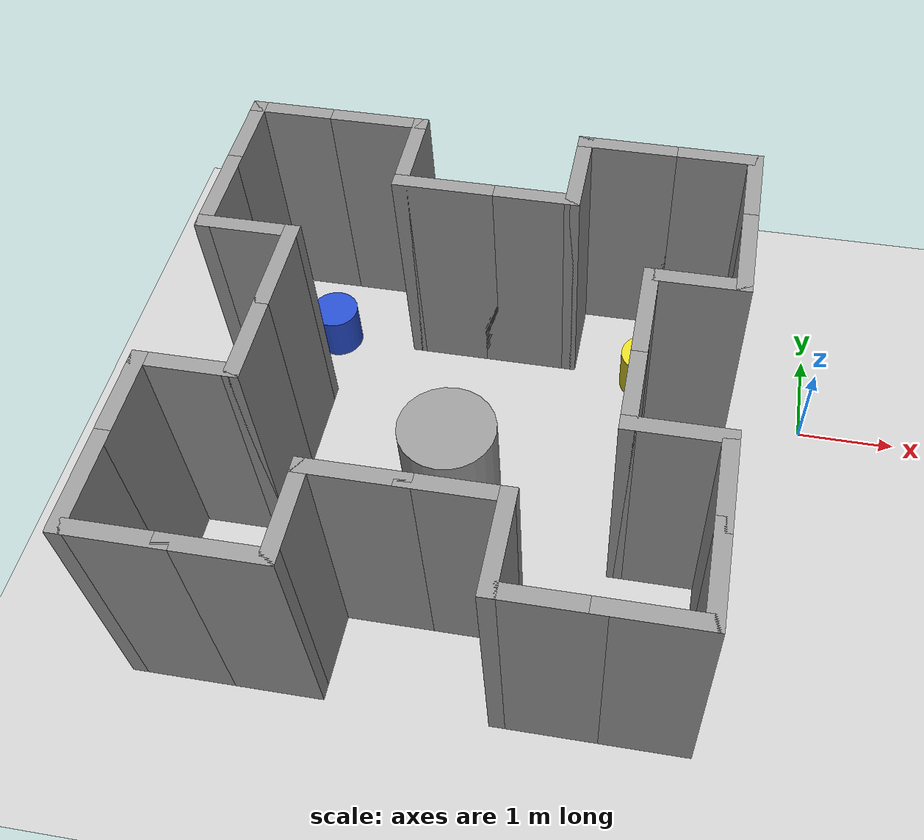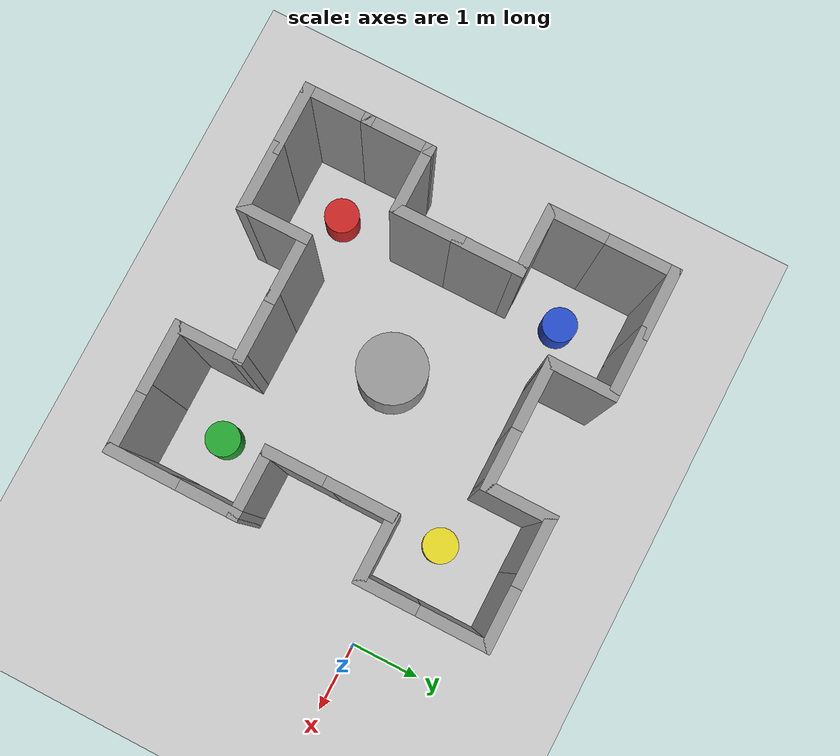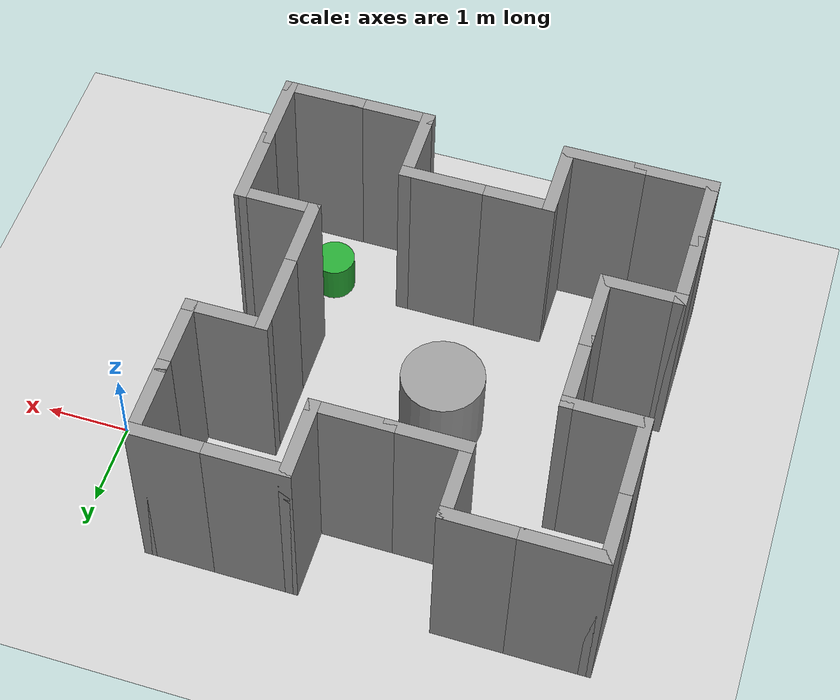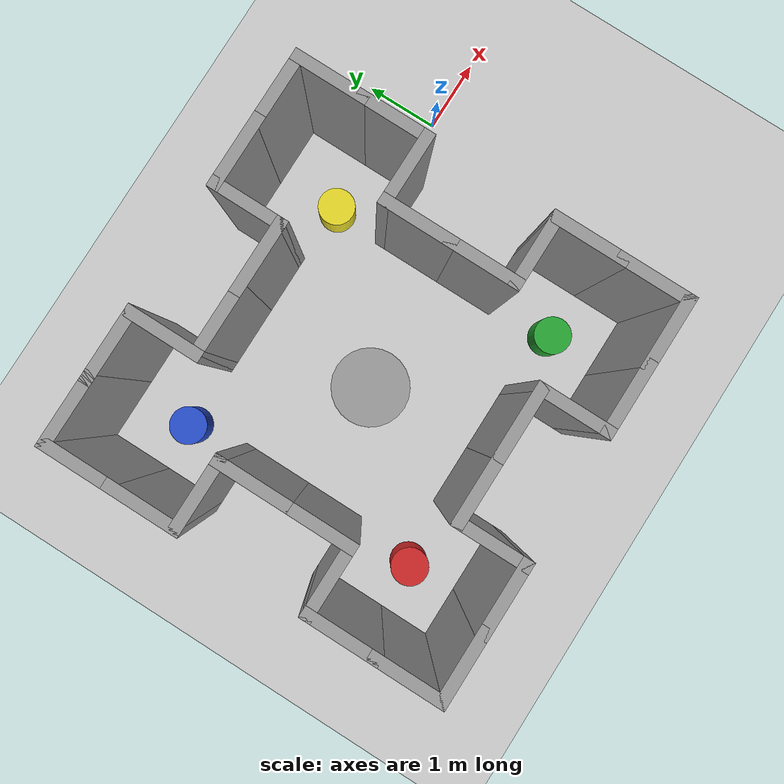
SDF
<sdf version="1.7">
 <world name="default">
  <light name="sun" type="directional">
   <pose>0 0 10 0 -0 0</pose>
   <diffuse>0.8 0.8 0.8 1</diffuse>
   <specular>0.2 0.2 0.2 1</specular>
   <attenuation>
    <range>1000</range>
    <constant>0.9</constant>
    <linear>0.01</linear>
    <quadratic>0.001</quadratic>
   </attenuation>
   <direction>-0.5 0.1 -0.9</direction>
   <spot><inner_angle>0</inner_angle><outer_angle>0</outer_angle><falloff>0</falloff></spot>
  </light>
  <model name="ground_plane">
   <static>1</static>
   <link name="link">
    <collision name="collision">
     <geometry><plane><normal>0 0 1</normal><size>100 100</size></plane></geometry>
     <surface><friction><ode><mu>100</mu><mu2>50</mu2></ode></friction></surface>
    </collision>
    <visual name="visual">
     <cast_shadows>0</cast_shadows>
     <geometry><plane><normal>0 0 1</normal><size>100 100</size></plane></geometry>
     <material>
      <script><uri>file://media/materials/scripts/gazebo.material</uri><name>Gazebo/Grey</name></script>
     </material>
    </visual>
   </link>
  </model>
  <gravity>0 0 -9.8</gravity>
  <magnetic_field>6e-06 2.3e-05 -4.2e-05</magnetic_field>
  <atmosphere type="adiabatic"/>
  <physics type="ode">
   <max_step_size>0.001</max_step_size>
   <real_time_factor>1</real_time_factor>
   <real_time_update_rate>1000</real_time_update_rate>
  </physics>
  <scene><ambient>0.4 0.4 0.4 1</ambient><background>0.7 0.7 0.7 1</background><shadows>1</shadows></scene>
  <audio><device>default</device></audio>
  <spherical_coordinates>
   <surface_model>EARTH_WGS84</surface_model>
   <latitude_deg>0</latitude_deg>
   <longitude_deg>0</longitude_deg>
   <elevation>0</elevation>
   <heading_deg>0</heading_deg>
  </spherical_coordinates>
  <model name="mine_world">
   <pose>-3.03129 -1.12885 0 0 -0 0</pose>
   <link name="Wall_11">
    <collision name="Wall_11_Collision">
     <geometry><box><size>1 0.15 2.5</size></box></geometry>
     <pose>0 0 1.25 0 -0 0</pose>
    </collision>
    <visual name="Wall_11_Visual">
     <pose>0 0 1.25 0 -0 0</pose>
     <geometry><box><size>1 0.15 2.5</size></box></geometry>
     <material>
      <script><uri>file://media/materials/scripts/gazebo.material</uri><name>Gazebo/Grey</name></script>
      <ambient>1 1 1 1</ambient>
     </material>
     <meta><layer>0</layer></meta>
    </visual>
    <pose>-2.95629 1.275 0 0 -0 1.5708</pose>
   </link>
   <link name="Wall_12">
    <collision name="Wall_12_Collision">
     <geometry><box><size>1 0.15 2.5</size></box></geometry>
     <pose>0 0 1.25 0 -0 0</pose>
    </collision>
    <visual name="Wall_12_Visual">
     <pose>0 0 1.25 0 -0 0</pose>
     <geometry><box><size>1 0.15 2.5</size></box></geometry>
     <material>
      <script><uri>file://media/materials/scripts/gazebo.material</uri><name>Gazebo/Grey</name></script>
      <ambient>1 1 1 1</ambient>
     </material>
     <meta><layer>0</layer></meta>
    </visual>
    <pose>-2.95629 2.125 0 0 -0 1.5708</pose>
   </link>
   <link name="Wall_13">
    <collision name="Wall_13_Collision">
     <geometry><box><size>1 0.15 2.5</size></box></geometry>
     <pose>0 0 1.25 0 -0 0</pose>
    </collision>
    <visual name="Wall_13_Visual">
     <pose>0 0 1.25 0 -0 0</pose>
     <geometry><box><size>1 0.15 2.5</size></box></geometry>
     <material>
      <script><uri>file://media/materials/scripts/gazebo.material</uri><name>Gazebo/Grey</name></script>
      <ambient>1 1 1 1</ambient>
     </material>
     <meta><layer>0</layer></meta>
    </visual>
    <pose>-2.53129 2.55 0 0 -0 0</pose>
   </link>
   <link name="Wall_14">
    <collision name="Wall_14_Collision">
     <geometry><box><size>1 0.15 2.5</size></box></geometry>
     <pose>0 0 1.25 0 -0 0</pose>
    </collision>
    <visual name="Wall_14_Visual">
     <pose>0 0 1.25 0 -0 0</pose>
     <geometry><box><size>1 0.15 2.5</size></box></geometry>
     <material>
      <script><uri>file://media/materials/scripts/gazebo.material</uri><name>Gazebo/Grey</name></script>
      <ambient>1 1 1 1</ambient>
     </material>
     <meta><layer>0</layer></meta>
    </visual>
    <pose>-1.68129 2.55 0 0 -0 0</pose>
   </link>
   <link name="Wall_15">
    <collision name="Wall_15_Collision">
     <geometry><box><size>1 0.15 2.5</size></box></geometry>
     <pose>0 0 1.25 0 -0 0</pose>
    </collision>
    <visual name="Wall_15_Visual">
     <pose>0 0 1.25 0 -0 0</pose>
     <geometry><box><size>1 0.15 2.5</size></box></geometry>
     <material>
      <script><uri>file://media/materials/scripts/gazebo.material</uri><name>Gazebo/Grey</name></script>
      <ambient>1 1 1 1</ambient>
     </material>
     <meta><layer>0</layer></meta>
    </visual>
    <pose>-1.25629 2.125 0 0 -0 -1.5708</pose>
   </link>
   <link name="Wall_16">
    <collision name="Wall_16_Collision">
     <geometry><box><size>1 0.15 2.5</size></box></geometry>
     <pose>0 0 1.25 0 -0 0</pose>
    </collision>
    <visual name="Wall_16_Visual">
     <pose>0 0 1.25 0 -0 0</pose>
     <geometry><box><size>1 0.15 2.5</size></box></geometry>
     <material>
      <script><uri>file://media/materials/scripts/gazebo.material</uri><name>Gazebo/Grey</name></script>
      <ambient>1 1 1 1</ambient>
     </material>
     <meta><layer>0</layer></meta>
    </visual>
    <pose>-0.831291 1.7 0 0 -0 0</pose>
   </link>
   <link name="Wall_17">
    <collision name="Wall_17_Collision">
     <geometry><box><size>1 0.15 2.5</size></box></geometry>
     <pose>0 0 1.25 0 -0 0</pose>
    </collision>
    <visual name="Wall_17_Visual">
     <pose>0 0 1.25 0 -0 0</pose>
     <geometry><box><size>1 0.15 2.5</size></box></geometry>
     <material>
      <script><uri>file://media/materials/scripts/gazebo.material</uri><name>Gazebo/Grey</name></script>
      <ambient>1 1 1 1</ambient>
     </material>
     <meta><layer>0</layer></meta>
    </visual>
    <pose>0.018708 1.7 0 0 -0 0</pose>
   </link>
   <link name="Wall_18">
    <collision name="Wall_18_Collision">
     <geometry><box><size>1 0.15 2.5</size></box></geometry>
     <pose>0 0 1.25 0 -0 0</pose>
    </collision>
    <visual name="Wall_18_Visual">
     <pose>0 0 1.25 0 -0 0</pose>
     <geometry><box><size>1 0.15 2.5</size></box></geometry>
     <material>
      <script><uri>file://media/materials/scripts/gazebo.material</uri><name>Gazebo/Grey</name></script>
      <ambient>1 1 1 1</ambient>
     </material>
     <meta><layer>0</layer></meta>
    </visual>
    <pose>0.443708 2.125 0 0 -0 1.5708</pose>
   </link>
   <link name="Wall_19">
    <collision name="Wall_19_Collision">
     <geometry><box><size>1 0.15 2.5</size></box></geometry>
     <pose>0 0 1.25 0 -0 0</pose>
    </collision>
    <visual name="Wall_19_Visual">
     <pose>0 0 1.25 0 -0 0</pose>
     <geometry><box><size>1 0.15 2.5</size></box></geometry>
     <material>
      <script><uri>file://media/materials/scripts/gazebo.material</uri><name>Gazebo/Grey</name></script>
      <ambient>1 1 1 1</ambient>
     </material>
     <meta><layer>0</layer></meta>
    </visual>
    <pose>0.868708 2.55 0 0 -0 0</pose>
   </link>
   <link name="Wall_20">
    <collision name="Wall_20_Collision">
     <geometry><box><size>1 0.15 2.5</size></box></geometry>
     <pose>0 0 1.25 0 -0 0</pose>
    </collision>
    <visual name="Wall_20_Visual">
     <pose>0 0 1.25 0 -0 0</pose>
     <geometry><box><size>1 0.15 2.5</size></box></geometry>
     <material>
      <script><uri>file://media/materials/scripts/gazebo.material</uri><name>Gazebo/Grey</name></script>
      <ambient>1 1 1 1</ambient>
     </material>
     <meta><layer>0</layer></meta>
    </visual>
    <pose>1.71871 2.55 0 0 -0 0</pose>
   </link>
   <link name="Wall_21">
    <collision name="Wall_21_Collision">
     <geometry><box><size>1 0.15 2.5</size></box></geometry>
     <pose>0 0 1.25 0 -0 0</pose>
    </collision>
    <visual name="Wall_21_Visual">
     <pose>0 0 1.25 0 -0 0</pose>
     <geometry><box><size>1 0.15 2.5</size></box></geometry>
     <material>
      <script><uri>file://media/materials/scripts/gazebo.material</uri><name>Gazebo/Grey</name></script>
      <ambient>1 1 1 1</ambient>
     </material>
     <meta><layer>0</layer></meta>
    </visual>
    <pose>2.14371 2.125 0 0 -0 -1.5708</pose>
   </link>
   <link name="Wall_22">
    <collision name="Wall_22_Collision">
     <geometry><box><size>1 0.15 2.5</size></box></geometry>
     <pose>0 0 1.25 0 -0 0</pose>
    </collision>
    <visual name="Wall_22_Visual">
     <pose>0 0 1.25 0 -0 0</pose>
     <geometry><box><size>1 0.15 2.5</size></box></geometry>
     <material>
      <script><uri>file://media/materials/scripts/gazebo.material</uri><name>Gazebo/Grey</name></script>
      <ambient>1 1 1 1</ambient>
     </material>
     <meta><layer>0</layer></meta>
    </visual>
    <pose>2.14371 1.275 0 0 -0 -1.5708</pose>
   </link>
   <link name="Wall_23">
    <collision name="Wall_23_Collision">
     <geometry><box><size>1 0.15 2.5</size></box></geometry>
     <pose>0 0 1.25 0 -0 0</pose>
    </collision>
    <visual name="Wall_23_Visual">
     <pose>0 0 1.25 0 -0 0</pose>
     <geometry><box><size>1 0.15 2.5</size></box></geometry>
     <material>
      <script><uri>file://media/materials/scripts/gazebo.material</uri><name>Gazebo/Grey</name></script>
      <ambient>1 1 1 1</ambient>
     </material>
     <meta><layer>0</layer></meta>
    </visual>
    <pose>1.71871 0.85 0 0 -0 3.14159</pose>
   </link>
   <link name="Wall_24">
    <collision name="Wall_24_Collision">
     <geometry><box><size>1 0.15 2.5</size></box></geometry>
     <pose>0 0 1.25 0 -0 0</pose>
    </collision>
    <visual name="Wall_24_Visual">
     <pose>0 0 1.25 0 -0 0</pose>
     <geometry><box><size>1 0.15 2.5</size></box></geometry>
     <material>
      <script><uri>file://media/materials/scripts/gazebo.material</uri><name>Gazebo/Grey</name></script>
      <ambient>1 1 1 1</ambient>
     </material>
     <meta><layer>0</layer></meta>
    </visual>
    <pose>1.29371 0.425 0 0 -0 -1.5708</pose>
   </link>
   <link name="Wall_25">
    <collision name="Wall_25_Collision">
     <geometry><box><size>1 0.15 2.5</size></box></geometry>
     <pose>0 0 1.25 0 -0 0</pose>
    </collision>
    <visual name="Wall_25_Visual">
     <pose>0 0 1.25 0 -0 0</pose>
     <geometry><box><size>1 0.15 2.5</size></box></geometry>
     <material>
      <script><uri>file://media/materials/scripts/gazebo.material</uri><name>Gazebo/Grey</name></script>
      <ambient>1 1 1 1</ambient>
     </material>
     <meta><layer>0</layer></meta>
    </visual>
    <pose>1.29371 -0.425 0 0 -0 -1.5708</pose>
   </link>
   <link name="Wall_26">
    <collision name="Wall_26_Collision">
     <geometry><box><size>1 0.15 2.5</size></box></geometry>
     <pose>0 0 1.25 0 -0 0</pose>
    </collision>
    <visual name="Wall_26_Visual">
     <pose>0 0 1.25 0 -0 0</pose>
     <geometry><box><size>1 0.15 2.5</size></box></geometry>
     <material>
      <script><uri>file://media/materials/scripts/gazebo.material</uri><name>Gazebo/Grey</name></script>
      <ambient>1 1 1 1</ambient>
     </material>
     <meta><layer>0</layer></meta>
    </visual>
    <pose>1.71871 -0.85 0 0 -0 0</pose>
   </link>
   <link name="Wall_27">
    <collision name="Wall_27_Collision">
     <geometry><box><size>1 0.15 2.5</size></box></geometry>
     <pose>0 0 1.25 0 -0 0</pose>
    </collision>
    <visual name="Wall_27_Visual">
     <pose>0 0 1.25 0 -0 0</pose>
     <geometry><box><size>1 0.15 2.5</size></box></geometry>
     <material>
      <script><uri>file://media/materials/scripts/gazebo.material</uri><name>Gazebo/Grey</name></script>
      <ambient>1 1 1 1</ambient>
     </material>
     <meta><layer>0</layer></meta>
    </visual>
    <pose>2.14371 -1.275 0 0 -0 -1.5708</pose>
   </link>
   <link name="Wall_28">
    <collision name="Wall_28_Collision">
     <geometry><box><size>1 0.15 2.5</size></box></geometry>
     <pose>0 0 1.25 0 -0 0</pose>
    </collision>
    <visual name="Wall_28_Visual">
     <pose>0 0 1.25 0 -0 0</pose>
     <geometry><box><size>1 0.15 2.5</size></box></geometry>
     <material>
      <script><uri>file://media/materials/scripts/gazebo.material</uri><name>Gazebo/Grey</name></script>
      <ambient>1 1 1 1</ambient>
     </material>
     <meta><layer>0</layer></meta>
    </visual>
    <pose>2.14371 -2.125 0 0 -0 -1.5708</pose>
   </link>
   <link name="Wall_29">
    <collision name="Wall_29_Collision">
     <geometry><box><size>1 0.15 2.5</size></box></geometry>
     <pose>0 0 1.25 0 -0 0</pose>
    </collision>
    <visual name="Wall_29_Visual">
     <pose>0 0 1.25 0 -0 0</pose>
     <geometry><box><size>1 0.15 2.5</size></box></geometry>
     <material>
      <script><uri>file://media/materials/scripts/gazebo.material</uri><name>Gazebo/Grey</name></script>
      <ambient>1 1 1 1</ambient>
     </material>
     <meta><layer>0</layer></meta>
    </visual>
    <pose>1.71871 -2.55 0 0 -0 3.14159</pose>
   </link>
   <link name="Wall_30">
    <collision name="Wall_30_Collision">
     <geometry><box><size>1 0.15 2.5</size></box></geometry>
     <pose>0 0 1.25 0 -0 0</pose>
    </collision>
    <visual name="Wall_30_Visual">
     <pose>0 0 1.25 0 -0 0</pose>
     <geometry><box><size>1 0.15 2.5</size></box></geometry>
     <material>
      <script><uri>file://media/materials/scripts/gazebo.material</uri><name>Gazebo/Grey</name></script>
      <ambient>1 1 1 1</ambient>
     </material>
     <meta><layer>0</layer></meta>
    </visual>
    <pose>0.868708 -2.55 0 0 -0 3.14159</pose>
   </link>
   <link name="Wall_31">
    <collision name="Wall_31_Collision">
     <geometry><box><size>1 0.15 2.5</size></box></geometry>
     <pose>0 0 1.25 0 -0 0</pose>
    </collision>
    <visual name="Wall_31_Visual">
     <pose>0 0 1.25 0 -0 0</pose>
     <geometry><box><size>1 0.15 2.5</size></box></geometry>
     <material>
      <script><uri>file://media/materials/scripts/gazebo.material</uri><name>Gazebo/Grey</name></script>
      <ambient>1 1 1 1</ambient>
     </material>
     <meta><layer>0</layer></meta>
    </visual>
    <pose>0.443708 -2.125 0 0 -0 1.5708</pose>
   </link>
   <link name="Wall_32">
    <collision name="Wall_32_Collision">
     <geometry><box><size>1 0.15 2.5</size></box></geometry>
     <pose>0 0 1.25 0 -0 0</pose>
    </collision>
    <visual name="Wall_32_Visual">
     <pose>0 0 1.25 0 -0 0</pose>
     <geometry><box><size>1 0.15 2.5</size></box></geometry>
     <material>
      <script><uri>file://media/materials/scripts/gazebo.material</uri><name>Gazebo/Grey</name></script>
      <ambient>1 1 1 1</ambient>
     </material>
     <meta><layer>0</layer></meta>
    </visual>
    <pose>0.018708 -1.7 0 0 -0 3.14159</pose>
   </link>
   <link name="Wall_33">
    <collision name="Wall_33_Collision">
     <geometry><box><size>1 0.15 2.5</size></box></geometry>
     <pose>0 0 1.25 0 -0 0</pose>
    </collision>
    <visual name="Wall_33_Visual">
     <pose>0 0 1.25 0 -0 0</pose>
     <geometry><box><size>1 0.15 2.5</size></box></geometry>
     <material>
      <script><uri>file://media/materials/scripts/gazebo.material</uri><name>Gazebo/Grey</name></script>
      <ambient>1 1 1 1</ambient>
     </material>
     <meta><layer>0</layer></meta>
    </visual>
    <pose>-0.831291 -1.7 0 0 -0 3.14159</pose>
   </link>
   <link name="Wall_34">
    <collision name="Wall_34_Collision">
     <geometry><box><size>1 0.15 2.5</size></box></geometry>
     <pose>0 0 1.25 0 -0 0</pose>
    </collision>
    <visual name="Wall_34_Visual">
     <pose>0 0 1.25 0 -0 0</pose>
     <geometry><box><size>1 0.15 2.5</size></box></geometry>
     <material>
      <script><uri>file://media/materials/scripts/gazebo.material</uri><name>Gazebo/Grey</name></script>
      <ambient>1 1 1 1</ambient>
     </material>
     <meta><layer>0</layer></meta>
    </visual>
    <pose>-1.25629 -2.125 0 0 -0 -1.5708</pose>
   </link>
   <link name="Wall_35">
    <collision name="Wall_35_Collision">
     <geometry><box><size>1 0.15 2.5</size></box></geometry>
     <pose>0 0 1.25 0 -0 0</pose>
    </collision>
    <visual name="Wall_35_Visual">
     <pose>0 0 1.25 0 -0 0</pose>
     <geometry><box><size>1 0.15 2.5</size></box></geometry>
     <material>
      <script><uri>file://media/materials/scripts/gazebo.material</uri><name>Gazebo/Grey</name></script>
      <ambient>1 1 1 1</ambient>
     </material>
     <meta><layer>0</layer></meta>
    </visual>
    <pose>-1.68129 -2.55 0 0 -0 3.14159</pose>
   </link>
   <link name="Wall_36">
    <collision name="Wall_36_Collision">
     <geometry><box><size>1 0.15 2.5</size></box></geometry>
     <pose>0 0 1.25 0 -0 0</pose>
    </collision>
    <visual name="Wall_36_Visual">
     <pose>0 0 1.25 0 -0 0</pose>
     <geometry><box><size>1 0.15 2.5</size></box></geometry>
     <material>
      <script><uri>file://media/materials/scripts/gazebo.material</uri><name>Gazebo/Grey</name></script>
      <ambient>1 1 1 1</ambient>
     </material>
     <meta><layer>0</layer></meta>
    </visual>
    <pose>-2.53129 -2.55 0 0 -0 3.14159</pose>
   </link>
   <link name="Wall_37">
    <collision name="Wall_37_Collision">
     <geometry><box><size>1 0.15 2.5</size></box></geometry>
     <pose>0 0 1.25 0 -0 0</pose>
    </collision>
    <visual name="Wall_37_Visual">
     <pose>0 0 1.25 0 -0 0</pose>
     <geometry><box><size>1 0.15 2.5</size></box></geometry>
     <material>
      <script><uri>file://media/materials/scripts/gazebo.material</uri><name>Gazebo/Grey</name></script>
      <ambient>1 1 1 1</ambient>
     </material>
     <meta><layer>0</layer></meta>
    </visual>
    <pose>-2.95629 -2.125 0 0 -0 1.5708</pose>
   </link>
   <link name="Wall_38">
    <collision name="Wall_38_Collision">
     <geometry><box><size>1 0.15 2.5</size></box></geometry>
     <pose>0 0 1.25 0 -0 0</pose>
    </collision>
    <visual name="Wall_38_Visual">
     <pose>0 0 1.25 0 -0 0</pose>
     <geometry><box><size>1 0.15 2.5</size></box></geometry>
     <material>
      <script><uri>file://media/materials/scripts/gazebo.material</uri><name>Gazebo/Grey</name></script>
      <ambient>1 1 1 1</ambient>
     </material>
     <meta><layer>0</layer></meta>
    </visual>
    <pose>-2.95629 -1.275 0 0 -0 1.5708</pose>
   </link>
   <link name="Wall_39">
    <collision name="Wall_39_Collision">
     <geometry><box><size>1 0.15 2.5</size></box></geometry>
     <pose>0 0 1.25 0 -0 0</pose>
    </collision>
    <visual name="Wall_39_Visual">
     <pose>0 0 1.25 0 -0 0</pose>
     <geometry><box><size>1 0.15 2.5</size></box></geometry>
     <material>
      <script><uri>file://media/materials/scripts/gazebo.material</uri><name>Gazebo/Grey</name></script>
      <ambient>1 1 1 1</ambient>
     </material>
     <meta><layer>0</layer></meta>
    </visual>
    <pose>-2.53129 -0.85 0 0 -0 0</pose>
   </link>
   <link name="Wall_40">
    <collision name="Wall_40_Collision">
     <geometry><box><size>1 0.15 2.5</size></box></geometry>
     <pose>0 0 1.25 0 -0 0</pose>
    </collision>
    <visual name="Wall_40_Visual">
     <pose>0 0 1.25 0 -0 0</pose>
     <geometry><box><size>1 0.15 2.5</size></box></geometry>
     <material>
      <script><uri>file://media/materials/scripts/gazebo.material</uri><name>Gazebo/Grey</name></script>
      <ambient>1 1 1 1</ambient>
     </material>
     <meta><layer>0</layer></meta>
    </visual>
    <pose>-2.10629 -0.425 0 0 -0 1.5708</pose>
   </link>
   <link name="Wall_41">
    <collision name="Wall_41_Collision">
     <geometry><box><size>1 0.15 2.5</size></box></geometry>
     <pose>0 0 1.25 0 -0 0</pose>
    </collision>
    <visual name="Wall_41_Visual">
     <pose>0 0 1.25 0 -0 0</pose>
     <geometry><box><size>1 0.15 2.5</size></box></geometry>
     <material>
      <script><uri>file://media/materials/scripts/gazebo.material</uri><name>Gazebo/Grey</name></script>
      <ambient>1 1 1 1</ambient>
     </material>
     <meta><layer>0</layer></meta>
    </visual>
    <pose>-2.10629 0.425 0 0 -0 1.5708</pose>
   </link>
   <link name="Wall_42">
    <collision name="Wall_42_Collision">
     <geometry><box><size>1 0.15 2.5</size></box></geometry>
     <pose>0 0 1.25 0 -0 0</pose>
    </collision>
    <visual name="Wall_42_Visual">
     <pose>0 0 1.25 0 -0 0</pose>
     <geometry><box><size>1 0.15 2.5</size></box></geometry>
     <material>
      <script><uri>file://media/materials/scripts/gazebo.material</uri><name>Gazebo/Grey</name></script>
      <ambient>1 1 1 1</ambient>
     </material>
     <meta><layer>0</layer></meta>
    </visual>
    <pose>-2.53129 0.85 0 0 -0 3.14159</pose>
   </link>
   <static>1</static>
  </model>
  <model name="number1">
   <pose>-5.21611 -2.8923 0.25 0 -0 0</pose>
   <static>1</static>
   <link name="link">
    <visual name="visual">
     <geometry><cylinder><radius>0.25</radius><length>0.5</length></cylinder></geometry>
     <material>
      <script><uri>file://media/materials/scripts/gazebo.material</uri><name>Gazebo/Red</name></script>
     </material>
    </visual>
    <collision name="collision">
     <geometry><cylinder><radius>0.25</radius><length>0.5</length></cylinder></geometry>
    </collision>
   </link>
  </model>
  <model name="number2">
   <pose>-5.23001 0.522192 0.25 0 -0 0</pose>
   <static>1</static>
   <link name="link">
    <visual name="visual">
     <geometry><cylinder><radius>0.25</radius><length>0.5</length></cylinder></geometry>
     <material>
      <script><uri>file://media/materials/scripts/gazebo.material</uri><name>Gazebo/Blue</name></script>
     </material>
    </visual>
    <collision name="collision">
     <geometry><cylinder><radius>0.25</radius><length>0.5</length></cylinder></geometry>
    </collision>
   </link>
  </model>
  <model name="number3">
   <pose>-1.67141 -2.87938 0.25 0 -0 0</pose>
   <static>1</static>
   <link name="link">
    <visual name="visual">
     <geometry><cylinder><radius>0.25</radius><length>0.5</length></cylinder></geometry>
     <material>
      <script><uri>file://media/materials/scripts/gazebo.material</uri><name>Gazebo/Green</name></script>
     </material>
    </visual>
    <collision name="collision">
     <geometry><cylinder><radius>0.25</radius><length>0.5</length></cylinder></geometry>
    </collision>
   </link>
  </model>
  <model name="number4">
   <pose>-1.74968 0.443629 0.25 0 -0 0</pose>
   <static>1</static>
   <link name="link">
    <visual name="visual">
     <geometry><cylinder><radius>0.25</radius><length>0.5</length></cylinder></geometry>
     <material>
      <script><uri>file://media/materials/scripts/gazebo.material</uri><name>Gazebo/Yellow</name></script>
     </material>
    </visual>
    <collision name="collision">
     <geometry><cylinder><radius>0.25</radius><length>0.5</length></cylinder></geometry>
    </collision>
   </link>
  </model>
  <model name="unit_cylinder">
   <pose>-3.5418 -1.22482 0.499997 3e-06 4e-06 -0</pose>
   <link name="link">
    <inertial>
     <mass>1</mass>
     <inertia><ixx>0.145833</ixx><ixy>0</ixy><ixz>0</ixz><iyy>0.145833</iyy><iyz>0</iyz><izz>0.125</izz></inertia>
    </inertial>
    <collision name="collision">
     <geometry><cylinder><radius>0.5</radius><length>1</length></cylinder></geometry>
    </collision>
    <visual name="visual">
     <geometry><cylinder><radius>0.5</radius><length>1</length></cylinder></geometry>
     <material>
      <script><name>Gazebo/Grey</name><uri>file://media/materials/scripts/gazebo.material</uri></script>
     </material>
    </visual>
   </link>
  </model>
 </world>
</sdf>
